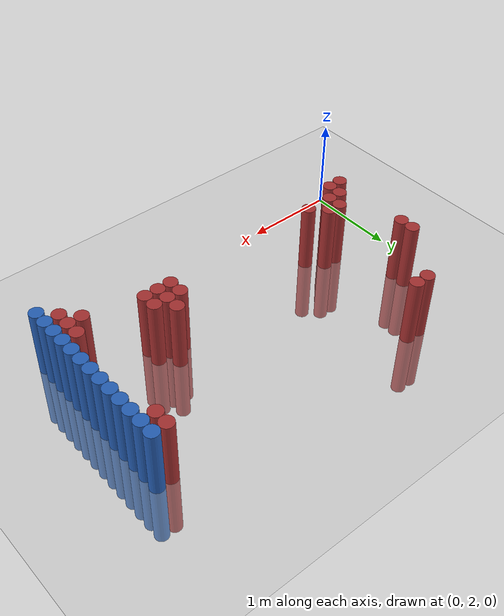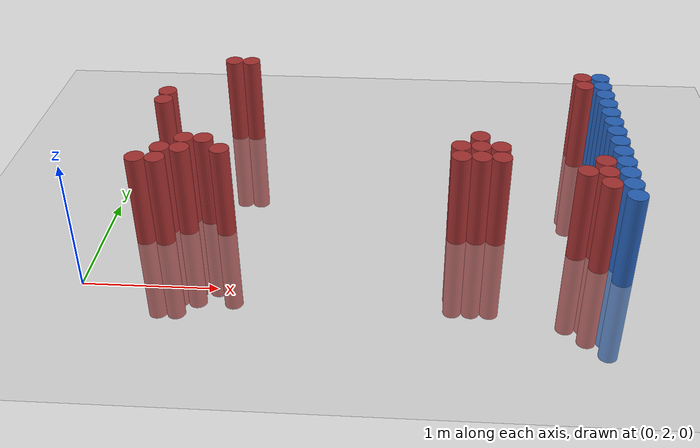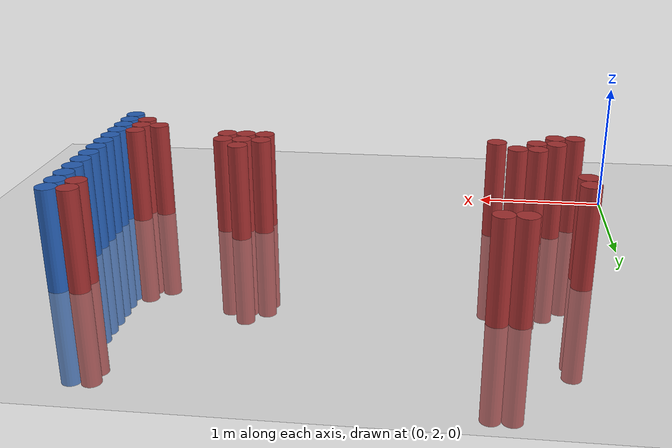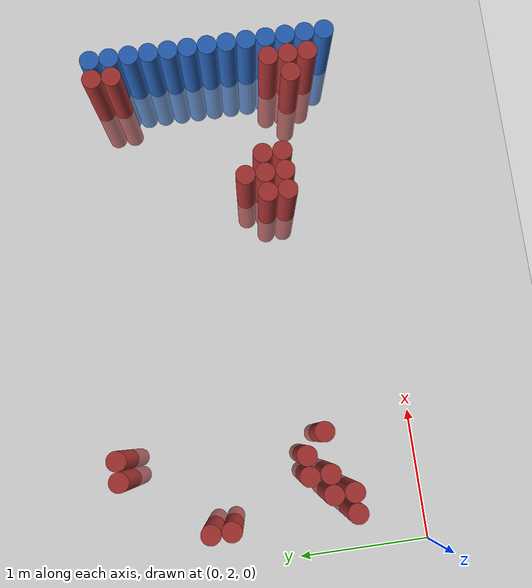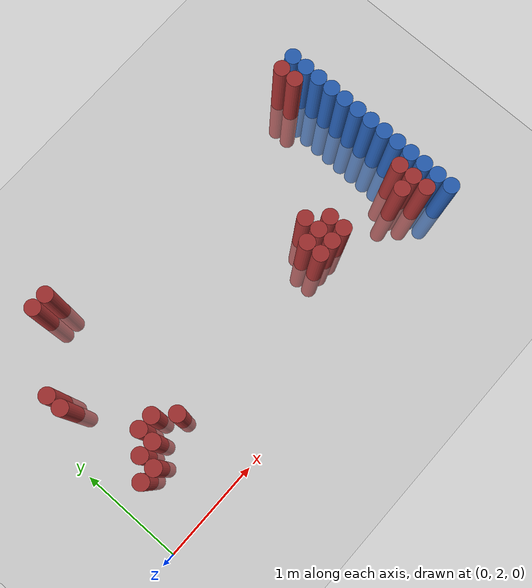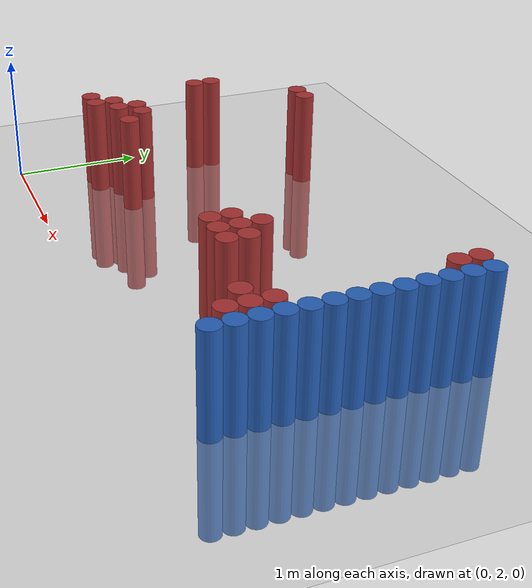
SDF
<sdf version="1.6">
 <world name="default">
  <model name="ground_plane">
   <static>1</static>
   <link name="link">
    <collision name="collision">
     <geometry><plane><normal>0 0 1</normal><size>100 100</size></plane></geometry>
     <surface><friction><ode><mu>100</mu><mu2>50</mu2></ode></friction></surface>
    </collision>
    <visual name="visual">
     <cast_shadows>0</cast_shadows>
     <geometry><plane><normal>0 0 1</normal><size>100 100</size></plane></geometry>
     <material>
      <script><uri>file://media/materials/scripts/gazebo.material</uri><name>Gazebo/Grey</name></script>
     </material>
    </visual>
   </link>
  </model>
  <model name="unit_cylinder_144">
   <static>1</static>
   <pose>3.925000 2.275000 0.000000 0.000000 0.000000 0.000000</pose>
   <link name="link">
    <inertial>
     <mass>1</mass>
     <inertia><ixx>0.145833</ixx><ixy>0</ixy><ixz>0</ixz><iyy>0.145833</iyy><iyz>0</iyz><izz>0.125</izz></inertia>
    </inertial>
    <collision name="collision">
     <geometry><cylinder><radius>0.075000</radius><length>1.5</length></cylinder></geometry>
    </collision>
    <visual name="visual">
     <geometry><cylinder><radius>0.075000</radius><length>1.5</length></cylinder></geometry>
     <material>
      <ambient>0.152000 0.379000 0.720000 1</ambient>
      <diffuse>0.152000 0.379000 0.720000 1</diffuse>
     </material>
     <material>
      <script><name>Gazebo/Grey</name><uri>file://media/materials/scripts/gazebo.material</uri></script>
     </material>
    </visual>
   </link>
  </model>
  <model name="unit_cylinder_146">
   <static>1</static>
   <pose>3.925000 2.425000 0.000000 0.000000 0.000000 0.000000</pose>
   <link name="link">
    <inertial>
     <mass>1</mass>
     <inertia><ixx>0.145833</ixx><ixy>0</ixy><ixz>0</ixz><iyy>0.145833</iyy><iyz>0</iyz><izz>0.125</izz></inertia>
    </inertial>
    <collision name="collision">
     <geometry><cylinder><radius>0.075000</radius><length>1.5</length></cylinder></geometry>
    </collision>
    <visual name="visual">
     <geometry><cylinder><radius>0.075000</radius><length>1.5</length></cylinder></geometry>
     <material>
      <ambient>0.152000 0.379000 0.720000 1</ambient>
      <diffuse>0.152000 0.379000 0.720000 1</diffuse>
     </material>
     <material>
      <script><name>Gazebo/Grey</name><uri>file://media/materials/scripts/gazebo.material</uri></script>
     </material>
    </visual>
   </link>
  </model>
  <model name="unit_cylinder_148">
   <static>1</static>
   <pose>3.925000 2.575000 0.000000 0.000000 0.000000 0.000000</pose>
   <link name="link">
    <inertial>
     <mass>1</mass>
     <inertia><ixx>0.145833</ixx><ixy>0</ixy><ixz>0</ixz><iyy>0.145833</iyy><iyz>0</iyz><izz>0.125</izz></inertia>
    </inertial>
    <collision name="collision">
     <geometry><cylinder><radius>0.075000</radius><length>1.5</length></cylinder></geometry>
    </collision>
    <visual name="visual">
     <geometry><cylinder><radius>0.075000</radius><length>1.5</length></cylinder></geometry>
     <material>
      <ambient>0.152000 0.379000 0.720000 1</ambient>
      <diffuse>0.152000 0.379000 0.720000 1</diffuse>
     </material>
     <material>
      <script><name>Gazebo/Grey</name><uri>file://media/materials/scripts/gazebo.material</uri></script>
     </material>
    </visual>
   </link>
  </model>
  <model name="unit_cylinder_150">
   <static>1</static>
   <pose>3.925000 2.725000 0.000000 0.000000 0.000000 0.000000</pose>
   <link name="link">
    <inertial>
     <mass>1</mass>
     <inertia><ixx>0.145833</ixx><ixy>0</ixy><ixz>0</ixz><iyy>0.145833</iyy><iyz>0</iyz><izz>0.125</izz></inertia>
    </inertial>
    <collision name="collision">
     <geometry><cylinder><radius>0.075000</radius><length>1.5</length></cylinder></geometry>
    </collision>
    <visual name="visual">
     <geometry><cylinder><radius>0.075000</radius><length>1.5</length></cylinder></geometry>
     <material>
      <ambient>0.152000 0.379000 0.720000 1</ambient>
      <diffuse>0.152000 0.379000 0.720000 1</diffuse>
     </material>
     <material>
      <script><name>Gazebo/Grey</name><uri>file://media/materials/scripts/gazebo.material</uri></script>
     </material>
    </visual>
   </link>
  </model>
  <model name="unit_cylinder_152">
   <static>1</static>
   <pose>3.925000 2.875000 0.000000 0.000000 0.000000 0.000000</pose>
   <link name="link">
    <inertial>
     <mass>1</mass>
     <inertia><ixx>0.145833</ixx><ixy>0</ixy><ixz>0</ixz><iyy>0.145833</iyy><iyz>0</iyz><izz>0.125</izz></inertia>
    </inertial>
    <collision name="collision">
     <geometry><cylinder><radius>0.075000</radius><length>1.5</length></cylinder></geometry>
    </collision>
    <visual name="visual">
     <geometry><cylinder><radius>0.075000</radius><length>1.5</length></cylinder></geometry>
     <material>
      <ambient>0.152000 0.379000 0.720000 1</ambient>
      <diffuse>0.152000 0.379000 0.720000 1</diffuse>
     </material>
     <material>
      <script><name>Gazebo/Grey</name><uri>file://media/materials/scripts/gazebo.material</uri></script>
     </material>
    </visual>
   </link>
  </model>
  <model name="unit_cylinder_154">
   <static>1</static>
   <pose>3.925000 3.025000 0.000000 0.000000 0.000000 0.000000</pose>
   <link name="link">
    <inertial>
     <mass>1</mass>
     <inertia><ixx>0.145833</ixx><ixy>0</ixy><ixz>0</ixz><iyy>0.145833</iyy><iyz>0</iyz><izz>0.125</izz></inertia>
    </inertial>
    <collision name="collision">
     <geometry><cylinder><radius>0.075000</radius><length>1.5</length></cylinder></geometry>
    </collision>
    <visual name="visual">
     <geometry><cylinder><radius>0.075000</radius><length>1.5</length></cylinder></geometry>
     <material>
      <ambient>0.152000 0.379000 0.720000 1</ambient>
      <diffuse>0.152000 0.379000 0.720000 1</diffuse>
     </material>
     <material>
      <script><name>Gazebo/Grey</name><uri>file://media/materials/scripts/gazebo.material</uri></script>
     </material>
    </visual>
   </link>
  </model>
  <model name="unit_cylinder_156">
   <static>1</static>
   <pose>3.925000 3.175000 0.000000 0.000000 0.000000 0.000000</pose>
   <link name="link">
    <inertial>
     <mass>1</mass>
     <inertia><ixx>0.145833</ixx><ixy>0</ixy><ixz>0</ixz><iyy>0.145833</iyy><iyz>0</iyz><izz>0.125</izz></inertia>
    </inertial>
    <collision name="collision">
     <geometry><cylinder><radius>0.075000</radius><length>1.5</length></cylinder></geometry>
    </collision>
    <visual name="visual">
     <geometry><cylinder><radius>0.075000</radius><length>1.5</length></cylinder></geometry>
     <material>
      <ambient>0.152000 0.379000 0.720000 1</ambient>
      <diffuse>0.152000 0.379000 0.720000 1</diffuse>
     </material>
     <material>
      <script><name>Gazebo/Grey</name><uri>file://media/materials/scripts/gazebo.material</uri></script>
     </material>
    </visual>
   </link>
  </model>
  <model name="unit_cylinder_158">
   <static>1</static>
   <pose>3.925000 3.325000 0.000000 0.000000 0.000000 0.000000</pose>
   <link name="link">
    <inertial>
     <mass>1</mass>
     <inertia><ixx>0.145833</ixx><ixy>0</ixy><ixz>0</ixz><iyy>0.145833</iyy><iyz>0</iyz><izz>0.125</izz></inertia>
    </inertial>
    <collision name="collision">
     <geometry><cylinder><radius>0.075000</radius><length>1.5</length></cylinder></geometry>
    </collision>
    <visual name="visual">
     <geometry><cylinder><radius>0.075000</radius><length>1.5</length></cylinder></geometry>
     <material>
      <ambient>0.152000 0.379000 0.720000 1</ambient>
      <diffuse>0.152000 0.379000 0.720000 1</diffuse>
     </material>
     <material>
      <script><name>Gazebo/Grey</name><uri>file://media/materials/scripts/gazebo.material</uri></script>
     </material>
    </visual>
   </link>
  </model>
  <model name="unit_cylinder_160">
   <static>1</static>
   <pose>3.925000 3.475000 0.000000 0.000000 0.000000 0.000000</pose>
   <link name="link">
    <inertial>
     <mass>1</mass>
     <inertia><ixx>0.145833</ixx><ixy>0</ixy><ixz>0</ixz><iyy>0.145833</iyy><iyz>0</iyz><izz>0.125</izz></inertia>
    </inertial>
    <collision name="collision">
     <geometry><cylinder><radius>0.075000</radius><length>1.5</length></cylinder></geometry>
    </collision>
    <visual name="visual">
     <geometry><cylinder><radius>0.075000</radius><length>1.5</length></cylinder></geometry>
     <material>
      <ambient>0.152000 0.379000 0.720000 1</ambient>
      <diffuse>0.152000 0.379000 0.720000 1</diffuse>
     </material>
     <material>
      <script><name>Gazebo/Grey</name><uri>file://media/materials/scripts/gazebo.material</uri></script>
     </material>
    </visual>
   </link>
  </model>
  <model name="unit_cylinder_162">
   <static>1</static>
   <pose>3.925000 3.625000 0.000000 0.000000 0.000000 0.000000</pose>
   <link name="link">
    <inertial>
     <mass>1</mass>
     <inertia><ixx>0.145833</ixx><ixy>0</ixy><ixz>0</ixz><iyy>0.145833</iyy><iyz>0</iyz><izz>0.125</izz></inertia>
    </inertial>
    <collision name="collision">
     <geometry><cylinder><radius>0.075000</radius><length>1.5</length></cylinder></geometry>
    </collision>
    <visual name="visual">
     <geometry><cylinder><radius>0.075000</radius><length>1.5</length></cylinder></geometry>
     <material>
      <ambient>0.152000 0.379000 0.720000 1</ambient>
      <diffuse>0.152000 0.379000 0.720000 1</diffuse>
     </material>
     <material>
      <script><name>Gazebo/Grey</name><uri>file://media/materials/scripts/gazebo.material</uri></script>
     </material>
    </visual>
   </link>
  </model>
  <model name="unit_cylinder_164">
   <static>1</static>
   <pose>3.925000 3.775000 0.000000 0.000000 0.000000 0.000000</pose>
   <link name="link">
    <inertial>
     <mass>1</mass>
     <inertia><ixx>0.145833</ixx><ixy>0</ixy><ixz>0</ixz><iyy>0.145833</iyy><iyz>0</iyz><izz>0.125</izz></inertia>
    </inertial>
    <collision name="collision">
     <geometry><cylinder><radius>0.075000</radius><length>1.5</length></cylinder></geometry>
    </collision>
    <visual name="visual">
     <geometry><cylinder><radius>0.075000</radius><length>1.5</length></cylinder></geometry>
     <material>
      <ambient>0.152000 0.379000 0.720000 1</ambient>
      <diffuse>0.152000 0.379000 0.720000 1</diffuse>
     </material>
     <material>
      <script><name>Gazebo/Grey</name><uri>file://media/materials/scripts/gazebo.material</uri></script>
     </material>
    </visual>
   </link>
  </model>
  <model name="unit_cylinder_166">
   <static>1</static>
   <pose>3.925000 3.925000 0.000000 0.000000 0.000000 0.000000</pose>
   <link name="link">
    <inertial>
     <mass>1</mass>
     <inertia><ixx>0.145833</ixx><ixy>0</ixy><ixz>0</ixz><iyy>0.145833</iyy><iyz>0</iyz><izz>0.125</izz></inertia>
    </inertial>
    <collision name="collision">
     <geometry><cylinder><radius>0.075000</radius><length>1.5</length></cylinder></geometry>
    </collision>
    <visual name="visual">
     <geometry><cylinder><radius>0.075000</radius><length>1.5</length></cylinder></geometry>
     <material>
      <ambient>0.152000 0.379000 0.720000 1</ambient>
      <diffuse>0.152000 0.379000 0.720000 1</diffuse>
     </material>
     <material>
      <script><name>Gazebo/Grey</name><uri>file://media/materials/scripts/gazebo.material</uri></script>
     </material>
    </visual>
   </link>
  </model>
  <model name="unit_cylinder_168">
   <static>1</static>
   <pose>3.925000 4.075000 0.000000 0.000000 0.000000 0.000000</pose>
   <link name="link">
    <inertial>
     <mass>1</mass>
     <inertia><ixx>0.145833</ixx><ixy>0</ixy><ixz>0</ixz><iyy>0.145833</iyy><iyz>0</iyz><izz>0.125</izz></inertia>
    </inertial>
    <collision name="collision">
     <geometry><cylinder><radius>0.075000</radius><length>1.5</length></cylinder></geometry>
    </collision>
    <visual name="visual">
     <geometry><cylinder><radius>0.075000</radius><length>1.5</length></cylinder></geometry>
     <material>
      <ambient>0.152000 0.379000 0.720000 1</ambient>
      <diffuse>0.152000 0.379000 0.720000 1</diffuse>
     </material>
     <material>
      <script><name>Gazebo/Grey</name><uri>file://media/materials/scripts/gazebo.material</uri></script>
     </material>
    </visual>
   </link>
  </model>
  <model name="unit_cylinder_392">
   <static>1</static>
   <pose>0.325000 2.575000 0.000000 0.000000 0.000000 0.000000</pose>
   <link name="link">
    <inertial>
     <mass>1</mass>
     <inertia><ixx>0.145833</ixx><ixy>0</ixy><ixz>0</ixz><iyy>0.145833</iyy><iyz>0</iyz><izz>0.125</izz></inertia>
    </inertial>
    <collision name="collision">
     <geometry><cylinder><radius>0.075000</radius><length>1.5</length></cylinder></geometry>
    </collision>
    <visual name="visual">
     <geometry><cylinder><radius>0.075000</radius><length>1.5</length></cylinder></geometry>
     <material>
      <ambient>0.648000 0.192000 0.192000 1</ambient>
      <diffuse>0.648000 0.192000 0.192000 1</diffuse>
     </material>
     <material>
      <script><name>Gazebo/Grey</name><uri>file://media/materials/scripts/gazebo.material</uri></script>
     </material>
    </visual>
   </link>
  </model>
  <model name="unit_cylinder_393">
   <static>1</static>
   <pose>0.325000 3.475000 0.000000 0.000000 0.000000 0.000000</pose>
   <link name="link">
    <inertial>
     <mass>1</mass>
     <inertia><ixx>0.145833</ixx><ixy>0</ixy><ixz>0</ixz><iyy>0.145833</iyy><iyz>0</iyz><izz>0.125</izz></inertia>
    </inertial>
    <collision name="collision">
     <geometry><cylinder><radius>0.075000</radius><length>1.5</length></cylinder></geometry>
    </collision>
    <visual name="visual">
     <geometry><cylinder><radius>0.075000</radius><length>1.5</length></cylinder></geometry>
     <material>
      <ambient>0.648000 0.192000 0.192000 1</ambient>
      <diffuse>0.648000 0.192000 0.192000 1</diffuse>
     </material>
     <material>
      <script><name>Gazebo/Grey</name><uri>file://media/materials/scripts/gazebo.material</uri></script>
     </material>
    </visual>
   </link>
  </model>
  <model name="unit_cylinder_394">
   <static>1</static>
   <pose>0.325000 3.625000 0.000000 0.000000 0.000000 0.000000</pose>
   <link name="link">
    <inertial>
     <mass>1</mass>
     <inertia><ixx>0.145833</ixx><ixy>0</ixy><ixz>0</ixz><iyy>0.145833</iyy><iyz>0</iyz><izz>0.125</izz></inertia>
    </inertial>
    <collision name="collision">
     <geometry><cylinder><radius>0.075000</radius><length>1.5</length></cylinder></geometry>
    </collision>
    <visual name="visual">
     <geometry><cylinder><radius>0.075000</radius><length>1.5</length></cylinder></geometry>
     <material>
      <ambient>0.648000 0.192000 0.192000 1</ambient>
      <diffuse>0.648000 0.192000 0.192000 1</diffuse>
     </material>
     <material>
      <script><name>Gazebo/Grey</name><uri>file://media/materials/scripts/gazebo.material</uri></script>
     </material>
    </visual>
   </link>
  </model>
  <model name="unit_cylinder_398">
   <static>1</static>
   <pose>0.475000 2.575000 0.000000 0.000000 0.000000 0.000000</pose>
   <link name="link">
    <inertial>
     <mass>1</mass>
     <inertia><ixx>0.145833</ixx><ixy>0</ixy><ixz>0</ixz><iyy>0.145833</iyy><iyz>0</iyz><izz>0.125</izz></inertia>
    </inertial>
    <collision name="collision">
     <geometry><cylinder><radius>0.075000</radius><length>1.5</length></cylinder></geometry>
    </collision>
    <visual name="visual">
     <geometry><cylinder><radius>0.075000</radius><length>1.5</length></cylinder></geometry>
     <material>
      <ambient>0.648000 0.192000 0.192000 1</ambient>
      <diffuse>0.648000 0.192000 0.192000 1</diffuse>
     </material>
     <material>
      <script><name>Gazebo/Grey</name><uri>file://media/materials/scripts/gazebo.material</uri></script>
     </material>
    </visual>
   </link>
  </model>
  <model name="unit_cylinder_399">
   <static>1</static>
   <pose>0.475000 2.725000 0.000000 0.000000 0.000000 0.000000</pose>
   <link name="link">
    <inertial>
     <mass>1</mass>
     <inertia><ixx>0.145833</ixx><ixy>0</ixy><ixz>0</ixz><iyy>0.145833</iyy><iyz>0</iyz><izz>0.125</izz></inertia>
    </inertial>
    <collision name="collision">
     <geometry><cylinder><radius>0.075000</radius><length>1.5</length></cylinder></geometry>
    </collision>
    <visual name="visual">
     <geometry><cylinder><radius>0.075000</radius><length>1.5</length></cylinder></geometry>
     <material>
      <ambient>0.648000 0.192000 0.192000 1</ambient>
      <diffuse>0.648000 0.192000 0.192000 1</diffuse>
     </material>
     <material>
      <script><name>Gazebo/Grey</name><uri>file://media/materials/scripts/gazebo.material</uri></script>
     </material>
    </visual>
   </link>
  </model>
  <model name="unit_cylinder_405">
   <static>1</static>
   <pose>0.625000 2.725000 0.000000 0.000000 0.000000 0.000000</pose>
   <link name="link">
    <inertial>
     <mass>1</mass>
     <inertia><ixx>0.145833</ixx><ixy>0</ixy><ixz>0</ixz><iyy>0.145833</iyy><iyz>0</iyz><izz>0.125</izz></inertia>
    </inertial>
    <collision name="collision">
     <geometry><cylinder><radius>0.075000</radius><length>1.5</length></cylinder></geometry>
    </collision>
    <visual name="visual">
     <geometry><cylinder><radius>0.075000</radius><length>1.5</length></cylinder></geometry>
     <material>
      <ambient>0.648000 0.192000 0.192000 1</ambient>
      <diffuse>0.648000 0.192000 0.192000 1</diffuse>
     </material>
     <material>
      <script><name>Gazebo/Grey</name><uri>file://media/materials/scripts/gazebo.material</uri></script>
     </material>
    </visual>
   </link>
  </model>
  <model name="unit_cylinder_406">
   <static>1</static>
   <pose>0.625000 2.875000 0.000000 0.000000 0.000000 0.000000</pose>
   <link name="link">
    <inertial>
     <mass>1</mass>
     <inertia><ixx>0.145833</ixx><ixy>0</ixy><ixz>0</ixz><iyy>0.145833</iyy><iyz>0</iyz><izz>0.125</izz></inertia>
    </inertial>
    <collision name="collision">
     <geometry><cylinder><radius>0.075000</radius><length>1.5</length></cylinder></geometry>
    </collision>
    <visual name="visual">
     <geometry><cylinder><radius>0.075000</radius><length>1.5</length></cylinder></geometry>
     <material>
      <ambient>0.648000 0.192000 0.192000 1</ambient>
      <diffuse>0.648000 0.192000 0.192000 1</diffuse>
     </material>
     <material>
      <script><name>Gazebo/Grey</name><uri>file://media/materials/scripts/gazebo.material</uri></script>
     </material>
    </visual>
   </link>
  </model>
  <model name="unit_cylinder_411">
   <static>1</static>
   <pose>0.775000 2.875000 0.000000 0.000000 0.000000 0.000000</pose>
   <link name="link">
    <inertial>
     <mass>1</mass>
     <inertia><ixx>0.145833</ixx><ixy>0</ixy><ixz>0</ixz><iyy>0.145833</iyy><iyz>0</iyz><izz>0.125</izz></inertia>
    </inertial>
    <collision name="collision">
     <geometry><cylinder><radius>0.075000</radius><length>1.5</length></cylinder></geometry>
    </collision>
    <visual name="visual">
     <geometry><cylinder><radius>0.075000</radius><length>1.5</length></cylinder></geometry>
     <material>
      <ambient>0.648000 0.192000 0.192000 1</ambient>
      <diffuse>0.648000 0.192000 0.192000 1</diffuse>
     </material>
     <material>
      <script><name>Gazebo/Grey</name><uri>file://media/materials/scripts/gazebo.material</uri></script>
     </material>
    </visual>
   </link>
  </model>
  <model name="unit_cylinder_412">
   <static>1</static>
   <pose>0.775000 4.225000 0.000000 0.000000 0.000000 0.000000</pose>
   <link name="link">
    <inertial>
     <mass>1</mass>
     <inertia><ixx>0.145833</ixx><ixy>0</ixy><ixz>0</ixz><iyy>0.145833</iyy><iyz>0</iyz><izz>0.125</izz></inertia>
    </inertial>
    <collision name="collision">
     <geometry><cylinder><radius>0.075000</radius><length>1.5</length></cylinder></geometry>
    </collision>
    <visual name="visual">
     <geometry><cylinder><radius>0.075000</radius><length>1.5</length></cylinder></geometry>
     <material>
      <ambient>0.648000 0.192000 0.192000 1</ambient>
      <diffuse>0.648000 0.192000 0.192000 1</diffuse>
     </material>
     <material>
      <script><name>Gazebo/Grey</name><uri>file://media/materials/scripts/gazebo.material</uri></script>
     </material>
    </visual>
   </link>
  </model>
  <model name="unit_cylinder_415">
   <static>1</static>
   <pose>0.925000 2.725000 0.000000 0.000000 0.000000 0.000000</pose>
   <link name="link">
    <inertial>
     <mass>1</mass>
     <inertia><ixx>0.145833</ixx><ixy>0</ixy><ixz>0</ixz><iyy>0.145833</iyy><iyz>0</iyz><izz>0.125</izz></inertia>
    </inertial>
    <collision name="collision">
     <geometry><cylinder><radius>0.075000</radius><length>1.5</length></cylinder></geometry>
    </collision>
    <visual name="visual">
     <geometry><cylinder><radius>0.075000</radius><length>1.5</length></cylinder></geometry>
     <material>
      <ambient>0.648000 0.192000 0.192000 1</ambient>
      <diffuse>0.648000 0.192000 0.192000 1</diffuse>
     </material>
     <material>
      <script><name>Gazebo/Grey</name><uri>file://media/materials/scripts/gazebo.material</uri></script>
     </material>
    </visual>
   </link>
  </model>
  <model name="unit_cylinder_416">
   <static>1</static>
   <pose>0.925000 4.225000 0.000000 0.000000 0.000000 0.000000</pose>
   <link name="link">
    <inertial>
     <mass>1</mass>
     <inertia><ixx>0.145833</ixx><ixy>0</ixy><ixz>0</ixz><iyy>0.145833</iyy><iyz>0</iyz><izz>0.125</izz></inertia>
    </inertial>
    <collision name="collision">
     <geometry><cylinder><radius>0.075000</radius><length>1.5</length></cylinder></geometry>
    </collision>
    <visual name="visual">
     <geometry><cylinder><radius>0.075000</radius><length>1.5</length></cylinder></geometry>
     <material>
      <ambient>0.648000 0.192000 0.192000 1</ambient>
      <diffuse>0.648000 0.192000 0.192000 1</diffuse>
     </material>
     <material>
      <script><name>Gazebo/Grey</name><uri>file://media/materials/scripts/gazebo.material</uri></script>
     </material>
    </visual>
   </link>
  </model>
  <model name="unit_cylinder_447">
   <static>1</static>
   <pose>2.725000 2.725000 0.000000 0.000000 0.000000 0.000000</pose>
   <link name="link">
    <inertial>
     <mass>1</mass>
     <inertia><ixx>0.145833</ixx><ixy>0</ixy><ixz>0</ixz><iyy>0.145833</iyy><iyz>0</iyz><izz>0.125</izz></inertia>
    </inertial>
    <collision name="collision">
     <geometry><cylinder><radius>0.075000</radius><length>1.5</length></cylinder></geometry>
    </collision>
    <visual name="visual">
     <geometry><cylinder><radius>0.075000</radius><length>1.5</length></cylinder></geometry>
     <material>
      <ambient>0.648000 0.192000 0.192000 1</ambient>
      <diffuse>0.648000 0.192000 0.192000 1</diffuse>
     </material>
     <material>
      <script><name>Gazebo/Grey</name><uri>file://media/materials/scripts/gazebo.material</uri></script>
     </material>
    </visual>
   </link>
  </model>
  <model name="unit_cylinder_448">
   <static>1</static>
   <pose>2.725000 2.875000 0.000000 0.000000 0.000000 0.000000</pose>
   <link name="link">
    <inertial>
     <mass>1</mass>
     <inertia><ixx>0.145833</ixx><ixy>0</ixy><ixz>0</ixz><iyy>0.145833</iyy><iyz>0</iyz><izz>0.125</izz></inertia>
    </inertial>
    <collision name="collision">
     <geometry><cylinder><radius>0.075000</radius><length>1.5</length></cylinder></geometry>
    </collision>
    <visual name="visual">
     <geometry><cylinder><radius>0.075000</radius><length>1.5</length></cylinder></geometry>
     <material>
      <ambient>0.648000 0.192000 0.192000 1</ambient>
      <diffuse>0.648000 0.192000 0.192000 1</diffuse>
     </material>
     <material>
      <script><name>Gazebo/Grey</name><uri>file://media/materials/scripts/gazebo.material</uri></script>
     </material>
    </visual>
   </link>
  </model>
  <model name="unit_cylinder_455">
   <static>1</static>
   <pose>2.875000 2.725000 0.000000 0.000000 0.000000 0.000000</pose>
   <link name="link">
    <inertial>
     <mass>1</mass>
     <inertia><ixx>0.145833</ixx><ixy>0</ixy><ixz>0</ixz><iyy>0.145833</iyy><iyz>0</iyz><izz>0.125</izz></inertia>
    </inertial>
    <collision name="collision">
     <geometry><cylinder><radius>0.075000</radius><length>1.5</length></cylinder></geometry>
    </collision>
    <visual name="visual">
     <geometry><cylinder><radius>0.075000</radius><length>1.5</length></cylinder></geometry>
     <material>
      <ambient>0.648000 0.192000 0.192000 1</ambient>
      <diffuse>0.648000 0.192000 0.192000 1</diffuse>
     </material>
     <material>
      <script><name>Gazebo/Grey</name><uri>file://media/materials/scripts/gazebo.material</uri></script>
     </material>
    </visual>
   </link>
  </model>
  <model name="unit_cylinder_456">
   <static>1</static>
   <pose>2.875000 2.875000 0.000000 0.000000 0.000000 0.000000</pose>
   <link name="link">
    <inertial>
     <mass>1</mass>
     <inertia><ixx>0.145833</ixx><ixy>0</ixy><ixz>0</ixz><iyy>0.145833</iyy><iyz>0</iyz><izz>0.125</izz></inertia>
    </inertial>
    <collision name="collision">
     <geometry><cylinder><radius>0.075000</radius><length>1.5</length></cylinder></geometry>
    </collision>
    <visual name="visual">
     <geometry><cylinder><radius>0.075000</radius><length>1.5</length></cylinder></geometry>
     <material>
      <ambient>0.648000 0.192000 0.192000 1</ambient>
      <diffuse>0.648000 0.192000 0.192000 1</diffuse>
     </material>
     <material>
      <script><name>Gazebo/Grey</name><uri>file://media/materials/scripts/gazebo.material</uri></script>
     </material>
    </visual>
   </link>
  </model>
  <model name="unit_cylinder_457">
   <static>1</static>
   <pose>2.875000 3.025000 0.000000 0.000000 0.000000 0.000000</pose>
   <link name="link">
    <inertial>
     <mass>1</mass>
     <inertia><ixx>0.145833</ixx><ixy>0</ixy><ixz>0</ixz><iyy>0.145833</iyy><iyz>0</iyz><izz>0.125</izz></inertia>
    </inertial>
    <collision name="collision">
     <geometry><cylinder><radius>0.075000</radius><length>1.5</length></cylinder></geometry>
    </collision>
    <visual name="visual">
     <geometry><cylinder><radius>0.075000</radius><length>1.5</length></cylinder></geometry>
     <material>
      <ambient>0.648000 0.192000 0.192000 1</ambient>
      <diffuse>0.648000 0.192000 0.192000 1</diffuse>
     </material>
     <material>
      <script><name>Gazebo/Grey</name><uri>file://media/materials/scripts/gazebo.material</uri></script>
     </material>
    </visual>
   </link>
  </model>
  <model name="unit_cylinder_458">
   <static>1</static>
   <pose>3.025000 2.725000 0.000000 0.000000 0.000000 0.000000</pose>
   <link name="link">
    <inertial>
     <mass>1</mass>
     <inertia><ixx>0.145833</ixx><ixy>0</ixy><ixz>0</ixz><iyy>0.145833</iyy><iyz>0</iyz><izz>0.125</izz></inertia>
    </inertial>
    <collision name="collision">
     <geometry><cylinder><radius>0.075000</radius><length>1.5</length></cylinder></geometry>
    </collision>
    <visual name="visual">
     <geometry><cylinder><radius>0.075000</radius><length>1.5</length></cylinder></geometry>
     <material>
      <ambient>0.648000 0.192000 0.192000 1</ambient>
      <diffuse>0.648000 0.192000 0.192000 1</diffuse>
     </material>
     <material>
      <script><name>Gazebo/Grey</name><uri>file://media/materials/scripts/gazebo.material</uri></script>
     </material>
    </visual>
   </link>
  </model>
  <model name="unit_cylinder_459">
   <static>1</static>
   <pose>3.025000 2.875000 0.000000 0.000000 0.000000 0.000000</pose>
   <link name="link">
    <inertial>
     <mass>1</mass>
     <inertia><ixx>0.145833</ixx><ixy>0</ixy><ixz>0</ixz><iyy>0.145833</iyy><iyz>0</iyz><izz>0.125</izz></inertia>
    </inertial>
    <collision name="collision">
     <geometry><cylinder><radius>0.075000</radius><length>1.5</length></cylinder></geometry>
    </collision>
    <visual name="visual">
     <geometry><cylinder><radius>0.075000</radius><length>1.5</length></cylinder></geometry>
     <material>
      <ambient>0.648000 0.192000 0.192000 1</ambient>
      <diffuse>0.648000 0.192000 0.192000 1</diffuse>
     </material>
     <material>
      <script><name>Gazebo/Grey</name><uri>file://media/materials/scripts/gazebo.material</uri></script>
     </material>
    </visual>
   </link>
  </model>
  <model name="unit_cylinder_476">
   <static>1</static>
   <pose>3.625000 2.575000 0.000000 0.000000 0.000000 0.000000</pose>
   <link name="link">
    <inertial>
     <mass>1</mass>
     <inertia><ixx>0.145833</ixx><ixy>0</ixy><ixz>0</ixz><iyy>0.145833</iyy><iyz>0</iyz><izz>0.125</izz></inertia>
    </inertial>
    <collision name="collision">
     <geometry><cylinder><radius>0.075000</radius><length>1.5</length></cylinder></geometry>
    </collision>
    <visual name="visual">
     <geometry><cylinder><radius>0.075000</radius><length>1.5</length></cylinder></geometry>
     <material>
      <ambient>0.648000 0.192000 0.192000 1</ambient>
      <diffuse>0.648000 0.192000 0.192000 1</diffuse>
     </material>
     <material>
      <script><name>Gazebo/Grey</name><uri>file://media/materials/scripts/gazebo.material</uri></script>
     </material>
    </visual>
   </link>
  </model>
  <model name="unit_cylinder_492">
   <static>1</static>
   <pose>3.775000 2.425000 0.000000 0.000000 0.000000 0.000000</pose>
   <link name="link">
    <inertial>
     <mass>1</mass>
     <inertia><ixx>0.145833</ixx><ixy>0</ixy><ixz>0</ixz><iyy>0.145833</iyy><iyz>0</iyz><izz>0.125</izz></inertia>
    </inertial>
    <collision name="collision">
     <geometry><cylinder><radius>0.075000</radius><length>1.5</length></cylinder></geometry>
    </collision>
    <visual name="visual">
     <geometry><cylinder><radius>0.075000</radius><length>1.5</length></cylinder></geometry>
     <material>
      <ambient>0.648000 0.192000 0.192000 1</ambient>
      <diffuse>0.648000 0.192000 0.192000 1</diffuse>
     </material>
     <material>
      <script><name>Gazebo/Grey</name><uri>file://media/materials/scripts/gazebo.material</uri></script>
     </material>
    </visual>
   </link>
  </model>
  <model name="unit_cylinder_493">
   <static>1</static>
   <pose>3.775000 2.575000 0.000000 0.000000 0.000000 0.000000</pose>
   <link name="link">
    <inertial>
     <mass>1</mass>
     <inertia><ixx>0.145833</ixx><ixy>0</ixy><ixz>0</ixz><iyy>0.145833</iyy><iyz>0</iyz><izz>0.125</izz></inertia>
    </inertial>
    <collision name="collision">
     <geometry><cylinder><radius>0.075000</radius><length>1.5</length></cylinder></geometry>
    </collision>
    <visual name="visual">
     <geometry><cylinder><radius>0.075000</radius><length>1.5</length></cylinder></geometry>
     <material>
      <ambient>0.648000 0.192000 0.192000 1</ambient>
      <diffuse>0.648000 0.192000 0.192000 1</diffuse>
     </material>
     <material>
      <script><name>Gazebo/Grey</name><uri>file://media/materials/scripts/gazebo.material</uri></script>
     </material>
    </visual>
   </link>
  </model>
  <model name="unit_cylinder_494">
   <static>1</static>
   <pose>3.775000 2.725000 0.000000 0.000000 0.000000 0.000000</pose>
   <link name="link">
    <inertial>
     <mass>1</mass>
     <inertia><ixx>0.145833</ixx><ixy>0</ixy><ixz>0</ixz><iyy>0.145833</iyy><iyz>0</iyz><izz>0.125</izz></inertia>
    </inertial>
    <collision name="collision">
     <geometry><cylinder><radius>0.075000</radius><length>1.5</length></cylinder></geometry>
    </collision>
    <visual name="visual">
     <geometry><cylinder><radius>0.075000</radius><length>1.5</length></cylinder></geometry>
     <material>
      <ambient>0.648000 0.192000 0.192000 1</ambient>
      <diffuse>0.648000 0.192000 0.192000 1</diffuse>
     </material>
     <material>
      <script><name>Gazebo/Grey</name><uri>file://media/materials/scripts/gazebo.material</uri></script>
     </material>
    </visual>
   </link>
  </model>
  <model name="unit_cylinder_495">
   <static>1</static>
   <pose>3.775000 3.925000 0.000000 0.000000 0.000000 0.000000</pose>
   <link name="link">
    <inertial>
     <mass>1</mass>
     <inertia><ixx>0.145833</ixx><ixy>0</ixy><ixz>0</ixz><iyy>0.145833</iyy><iyz>0</iyz><izz>0.125</izz></inertia>
    </inertial>
    <collision name="collision">
     <geometry><cylinder><radius>0.075000</radius><length>1.5</length></cylinder></geometry>
    </collision>
    <visual name="visual">
     <geometry><cylinder><radius>0.075000</radius><length>1.5</length></cylinder></geometry>
     <material>
      <ambient>0.648000 0.192000 0.192000 1</ambient>
      <diffuse>0.648000 0.192000 0.192000 1</diffuse>
     </material>
     <material>
      <script><name>Gazebo/Grey</name><uri>file://media/materials/scripts/gazebo.material</uri></script>
     </material>
    </visual>
   </link>
  </model>
  <model name="unit_cylinder_496">
   <static>1</static>
   <pose>3.775000 4.075000 0.000000 0.000000 0.000000 0.000000</pose>
   <link name="link">
    <inertial>
     <mass>1</mass>
     <inertia><ixx>0.145833</ixx><ixy>0</ixy><ixz>0</ixz><iyy>0.145833</iyy><iyz>0</iyz><izz>0.125</izz></inertia>
    </inertial>
    <collision name="collision">
     <geometry><cylinder><radius>0.075000</radius><length>1.5</length></cylinder></geometry>
    </collision>
    <visual name="visual">
     <geometry><cylinder><radius>0.075000</radius><length>1.5</length></cylinder></geometry>
     <material>
      <ambient>0.648000 0.192000 0.192000 1</ambient>
      <diffuse>0.648000 0.192000 0.192000 1</diffuse>
     </material>
     <material>
      <script><name>Gazebo/Grey</name><uri>file://media/materials/scripts/gazebo.material</uri></script>
     </material>
    </visual>
   </link>
  </model>
  <model name="unit_cylinder_533">
   <static>1</static>
   <pose>3.925000 2.275000 0.000000 0.000000 0.000000 0.000000</pose>
   <link name="link">
    <inertial>
     <mass>1</mass>
     <inertia><ixx>0.145833</ixx><ixy>0</ixy><ixz>0</ixz><iyy>0.145833</iyy><iyz>0</iyz><izz>0.125</izz></inertia>
    </inertial>
    <collision name="collision">
     <geometry><cylinder><radius>0.075000</radius><length>1.5</length></cylinder></geometry>
    </collision>
    <visual name="visual">
     <geometry><cylinder><radius>0.075000</radius><length>1.5</length></cylinder></geometry>
     <material>
      <ambient>0.152000 0.379000 0.720000 1</ambient>
      <diffuse>0.152000 0.379000 0.720000 1</diffuse>
     </material>
     <material>
      <script><name>Gazebo/Grey</name><uri>file://media/materials/scripts/gazebo.material</uri></script>
     </material>
    </visual>
   </link>
  </model>
  <model name="unit_cylinder_534">
   <static>1</static>
   <pose>3.925000 2.425000 0.000000 0.000000 0.000000 0.000000</pose>
   <link name="link">
    <inertial>
     <mass>1</mass>
     <inertia><ixx>0.145833</ixx><ixy>0</ixy><ixz>0</ixz><iyy>0.145833</iyy><iyz>0</iyz><izz>0.125</izz></inertia>
    </inertial>
    <collision name="collision">
     <geometry><cylinder><radius>0.075000</radius><length>1.5</length></cylinder></geometry>
    </collision>
    <visual name="visual">
     <geometry><cylinder><radius>0.075000</radius><length>1.5</length></cylinder></geometry>
     <material>
      <ambient>0.152000 0.379000 0.720000 1</ambient>
      <diffuse>0.152000 0.379000 0.720000 1</diffuse>
     </material>
     <material>
      <script><name>Gazebo/Grey</name><uri>file://media/materials/scripts/gazebo.material</uri></script>
     </material>
    </visual>
   </link>
  </model>
  <model name="unit_cylinder_535">
   <static>1</static>
   <pose>3.925000 2.575000 0.000000 0.000000 0.000000 0.000000</pose>
   <link name="link">
    <inertial>
     <mass>1</mass>
     <inertia><ixx>0.145833</ixx><ixy>0</ixy><ixz>0</ixz><iyy>0.145833</iyy><iyz>0</iyz><izz>0.125</izz></inertia>
    </inertial>
    <collision name="collision">
     <geometry><cylinder><radius>0.075000</radius><length>1.5</length></cylinder></geometry>
    </collision>
    <visual name="visual">
     <geometry><cylinder><radius>0.075000</radius><length>1.5</length></cylinder></geometry>
     <material>
      <ambient>0.152000 0.379000 0.720000 1</ambient>
      <diffuse>0.152000 0.379000 0.720000 1</diffuse>
     </material>
     <material>
      <script><name>Gazebo/Grey</name><uri>file://media/materials/scripts/gazebo.material</uri></script>
     </material>
    </visual>
   </link>
  </model>
  <model name="unit_cylinder_536">
   <static>1</static>
   <pose>3.925000 2.725000 0.000000 0.000000 0.000000 0.000000</pose>
   <link name="link">
    <inertial>
     <mass>1</mass>
     <inertia><ixx>0.145833</ixx><ixy>0</ixy><ixz>0</ixz><iyy>0.145833</iyy><iyz>0</iyz><izz>0.125</izz></inertia>
    </inertial>
    <collision name="collision">
     <geometry><cylinder><radius>0.075000</radius><length>1.5</length></cylinder></geometry>
    </collision>
    <visual name="visual">
     <geometry><cylinder><radius>0.075000</radius><length>1.5</length></cylinder></geometry>
     <material>
      <ambient>0.152000 0.379000 0.720000 1</ambient>
      <diffuse>0.152000 0.379000 0.720000 1</diffuse>
     </material>
     <material>
      <script><name>Gazebo/Grey</name><uri>file://media/materials/scripts/gazebo.material</uri></script>
     </material>
    </visual>
   </link>
  </model>
  <model name="unit_cylinder_537">
   <static>1</static>
   <pose>3.925000 2.875000 0.000000 0.000000 0.000000 0.000000</pose>
   <link name="link">
    <inertial>
     <mass>1</mass>
     <inertia><ixx>0.145833</ixx><ixy>0</ixy><ixz>0</ixz><iyy>0.145833</iyy><iyz>0</iyz><izz>0.125</izz></inertia>
    </inertial>
    <collision name="collision">
     <geometry><cylinder><radius>0.075000</radius><length>1.5</length></cylinder></geometry>
    </collision>
    <visual name="visual">
     <geometry><cylinder><radius>0.075000</radius><length>1.5</length></cylinder></geometry>
     <material>
      <ambient>0.152000 0.379000 0.720000 1</ambient>
      <diffuse>0.152000 0.379000 0.720000 1</diffuse>
     </material>
     <material>
      <script><name>Gazebo/Grey</name><uri>file://media/materials/scripts/gazebo.material</uri></script>
     </material>
    </visual>
   </link>
  </model>
  <model name="unit_cylinder_538">
   <static>1</static>
   <pose>3.925000 3.025000 0.000000 0.000000 0.000000 0.000000</pose>
   <link name="link">
    <inertial>
     <mass>1</mass>
     <inertia><ixx>0.145833</ixx><ixy>0</ixy><ixz>0</ixz><iyy>0.145833</iyy><iyz>0</iyz><izz>0.125</izz></inertia>
    </inertial>
    <collision name="collision">
     <geometry><cylinder><radius>0.075000</radius><length>1.5</length></cylinder></geometry>
    </collision>
    <visual name="visual">
     <geometry><cylinder><radius>0.075000</radius><length>1.5</length></cylinder></geometry>
     <material>
      <ambient>0.152000 0.379000 0.720000 1</ambient>
      <diffuse>0.152000 0.379000 0.720000 1</diffuse>
     </material>
     <material>
      <script><name>Gazebo/Grey</name><uri>file://media/materials/scripts/gazebo.material</uri></script>
     </material>
    </visual>
   </link>
  </model>
  <model name="unit_cylinder_539">
   <static>1</static>
   <pose>3.925000 3.175000 0.000000 0.000000 0.000000 0.000000</pose>
   <link name="link">
    <inertial>
     <mass>1</mass>
     <inertia><ixx>0.145833</ixx><ixy>0</ixy><ixz>0</ixz><iyy>0.145833</iyy><iyz>0</iyz><izz>0.125</izz></inertia>
    </inertial>
    <collision name="collision">
     <geometry><cylinder><radius>0.075000</radius><length>1.5</length></cylinder></geometry>
    </collision>
    <visual name="visual">
     <geometry><cylinder><radius>0.075000</radius><length>1.5</length></cylinder></geometry>
     <material>
      <ambient>0.152000 0.379000 0.720000 1</ambient>
      <diffuse>0.152000 0.379000 0.720000 1</diffuse>
     </material>
     <material>
      <script><name>Gazebo/Grey</name><uri>file://media/materials/scripts/gazebo.material</uri></script>
     </material>
    </visual>
   </link>
  </model>
  <model name="unit_cylinder_540">
   <static>1</static>
   <pose>3.925000 3.325000 0.000000 0.000000 0.000000 0.000000</pose>
   <link name="link">
    <inertial>
     <mass>1</mass>
     <inertia><ixx>0.145833</ixx><ixy>0</ixy><ixz>0</ixz><iyy>0.145833</iyy><iyz>0</iyz><izz>0.125</izz></inertia>
    </inertial>
    <collision name="collision">
     <geometry><cylinder><radius>0.075000</radius><length>1.5</length></cylinder></geometry>
    </collision>
    <visual name="visual">
     <geometry><cylinder><radius>0.075000</radius><length>1.5</length></cylinder></geometry>
     <material>
      <ambient>0.152000 0.379000 0.720000 1</ambient>
      <diffuse>0.152000 0.379000 0.720000 1</diffuse>
     </material>
     <material>
      <script><name>Gazebo/Grey</name><uri>file://media/materials/scripts/gazebo.material</uri></script>
     </material>
    </visual>
   </link>
  </model>
  <model name="unit_cylinder_541">
   <static>1</static>
   <pose>3.925000 3.475000 0.000000 0.000000 0.000000 0.000000</pose>
   <link name="link">
    <inertial>
     <mass>1</mass>
     <inertia><ixx>0.145833</ixx><ixy>0</ixy><ixz>0</ixz><iyy>0.145833</iyy><iyz>0</iyz><izz>0.125</izz></inertia>
    </inertial>
    <collision name="collision">
     <geometry><cylinder><radius>0.075000</radius><length>1.5</length></cylinder></geometry>
    </collision>
    <visual name="visual">
     <geometry><cylinder><radius>0.075000</radius><length>1.5</length></cylinder></geometry>
     <material>
      <ambient>0.152000 0.379000 0.720000 1</ambient>
      <diffuse>0.152000 0.379000 0.720000 1</diffuse>
     </material>
     <material>
      <script><name>Gazebo/Grey</name><uri>file://media/materials/scripts/gazebo.material</uri></script>
     </material>
    </visual>
   </link>
  </model>
  <model name="unit_cylinder_542">
   <static>1</static>
   <pose>3.925000 3.625000 0.000000 0.000000 0.000000 0.000000</pose>
   <link name="link">
    <inertial>
     <mass>1</mass>
     <inertia><ixx>0.145833</ixx><ixy>0</ixy><ixz>0</ixz><iyy>0.145833</iyy><iyz>0</iyz><izz>0.125</izz></inertia>
    </inertial>
    <collision name="collision">
     <geometry><cylinder><radius>0.075000</radius><length>1.5</length></cylinder></geometry>
    </collision>
    <visual name="visual">
     <geometry><cylinder><radius>0.075000</radius><length>1.5</length></cylinder></geometry>
     <material>
      <ambient>0.152000 0.379000 0.720000 1</ambient>
      <diffuse>0.152000 0.379000 0.720000 1</diffuse>
     </material>
     <material>
      <script><name>Gazebo/Grey</name><uri>file://media/materials/scripts/gazebo.material</uri></script>
     </material>
    </visual>
   </link>
  </model>
  <model name="unit_cylinder_543">
   <static>1</static>
   <pose>3.925000 3.775000 0.000000 0.000000 0.000000 0.000000</pose>
   <link name="link">
    <inertial>
     <mass>1</mass>
     <inertia><ixx>0.145833</ixx><ixy>0</ixy><ixz>0</ixz><iyy>0.145833</iyy><iyz>0</iyz><izz>0.125</izz></inertia>
    </inertial>
    <collision name="collision">
     <geometry><cylinder><radius>0.075000</radius><length>1.5</length></cylinder></geometry>
    </collision>
    <visual name="visual">
     <geometry><cylinder><radius>0.075000</radius><length>1.5</length></cylinder></geometry>
     <material>
      <ambient>0.152000 0.379000 0.720000 1</ambient>
      <diffuse>0.152000 0.379000 0.720000 1</diffuse>
     </material>
     <material>
      <script><name>Gazebo/Grey</name><uri>file://media/materials/scripts/gazebo.material</uri></script>
     </material>
    </visual>
   </link>
  </model>
  <model name="unit_cylinder_544">
   <static>1</static>
   <pose>3.925000 3.925000 0.000000 0.000000 0.000000 0.000000</pose>
   <link name="link">
    <inertial>
     <mass>1</mass>
     <inertia><ixx>0.145833</ixx><ixy>0</ixy><ixz>0</ixz><iyy>0.145833</iyy><iyz>0</iyz><izz>0.125</izz></inertia>
    </inertial>
    <collision name="collision">
     <geometry><cylinder><radius>0.075000</radius><length>1.5</length></cylinder></geometry>
    </collision>
    <visual name="visual">
     <geometry><cylinder><radius>0.075000</radius><length>1.5</length></cylinder></geometry>
     <material>
      <ambient>0.152000 0.379000 0.720000 1</ambient>
      <diffuse>0.152000 0.379000 0.720000 1</diffuse>
     </material>
     <material>
      <script><name>Gazebo/Grey</name><uri>file://media/materials/scripts/gazebo.material</uri></script>
     </material>
    </visual>
   </link>
  </model>
  <model name="unit_cylinder_545">
   <static>1</static>
   <pose>3.925000 4.075000 0.000000 0.000000 0.000000 0.000000</pose>
   <link name="link">
    <inertial>
     <mass>1</mass>
     <inertia><ixx>0.145833</ixx><ixy>0</ixy><ixz>0</ixz><iyy>0.145833</iyy><iyz>0</iyz><izz>0.125</izz></inertia>
    </inertial>
    <collision name="collision">
     <geometry><cylinder><radius>0.075000</radius><length>1.5</length></cylinder></geometry>
    </collision>
    <visual name="visual">
     <geometry><cylinder><radius>0.075000</radius><length>1.5</length></cylinder></geometry>
     <material>
      <ambient>0.152000 0.379000 0.720000 1</ambient>
      <diffuse>0.152000 0.379000 0.720000 1</diffuse>
     </material>
     <material>
      <script><name>Gazebo/Grey</name><uri>file://media/materials/scripts/gazebo.material</uri></script>
     </material>
    </visual>
   </link>
  </model>
 </world>
</sdf>
